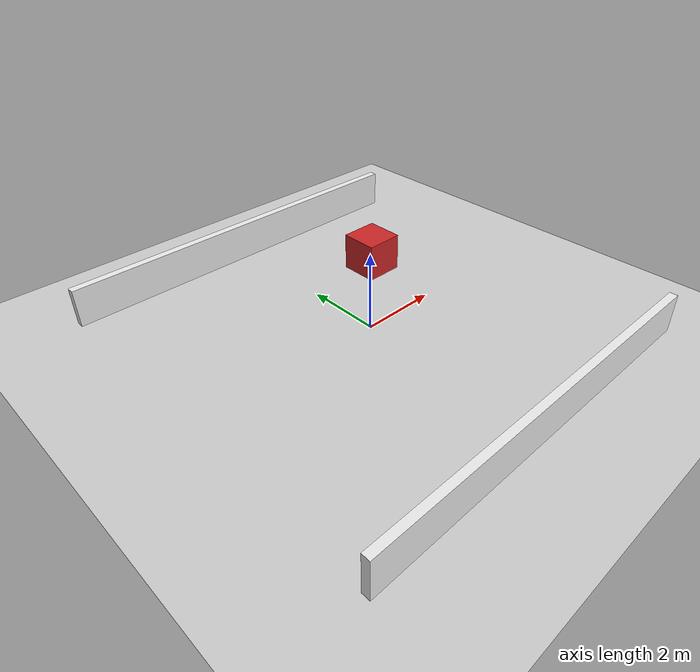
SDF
<?xml version="1.0" ?>
<sdf version="1.6">
  <world name="agv_world">

    <!-- Ground plane -->
    <model name="ground_plane">
      <static>true</static>
      <link name="link">
        <collision name="collision">
          <geometry>
            <plane>
              <normal>0 0 1</normal>
              <size>100 100</size>
            </plane>
          </geometry>
          <surface>
            <friction>
              <ode>
                <mu>0.8</mu> <!-- Increased friction -->
                <mu2>0.8</mu2>
              </ode>
            </friction>
          </surface>
        </collision>
        <visual name="visual">
          <geometry>
            <plane>
              <normal>0 0 1</normal>
              <size>100 100</size>
            </plane>
          </geometry>
          <material>
            <script>
              <uri>file://media/materials/scripts/gazebo.material</uri>
              <name>Gazebo/Grey</name>
            </script>
          </material>
        </visual>
      </link>
    </model>

    <!-- Wall 1 -->
    <model name="wall_1">
      <static>true</static>
      <pose>0 5 0.5 0 0 0</pose>
      <link name="link">
        <collision name="collision">
          <geometry>
            <box>
              <size>10 0.2 1</size>
            </box>
          </geometry>
        </collision>
        <visual name="visual">
          <geometry>
            <box>
              <size>10 0.2 1</size>
            </box>
          </geometry>
          <material>
            <script>
              <name>Gazebo/White</name>
            </script>
          </material>
        </visual>
      </link>
    </model>

    <!-- Wall 2 -->
    <model name="wall_2">
      <static>true</static>
      <pose>0 -5 0.5 0 0 0</pose>
      <link name="link">
        <collision name="collision">
          <geometry>
            <box>
              <size>10 0.2 1</size>
            </box>
          </geometry>
        </collision>
        <visual name="visual">
          <geometry>
            <box>
              <size>10 0.2 1</size>
            </box>
          </geometry>
          <material>
            <script>
              <name>Gazebo/White</name>
            </script>
          </material>
        </visual>
      </link>
    </model>

    <!-- Obstacle -->
    <model name="obstacle">
      <static>true</static>
      <pose>2 2 0.5 0 0 0</pose>
      <link name="link">
        <collision name="collision">
          <geometry>
            <box>
              <size>1 1 1</size>
            </box>
          </geometry>
        </collision>
        <visual name="visual">
          <geometry>
            <box>
              <size>1 1 1</size>
            </box>
          </geometry>
          <material>
            <script>
              <name>Gazebo/Red</name>
            </script>
          </material>
        </visual>
      </link>
    </model>

    <!-- Light source -->
    <light type="point" name="sun">
      <pose>0 0 10 0 0 0</pose>
      <diffuse>0.8 0.8 0.8 1</diffuse>
      <specular>0.2 0.2 0.2 1</specular>
      <attenuation>
        <range>20</range>
        <constant>0.8</constant>
        <linear>0.1</linear>
        <quadratic>0.01</quadratic>
      </attenuation>
    </light>

  </world>
</sdf>
